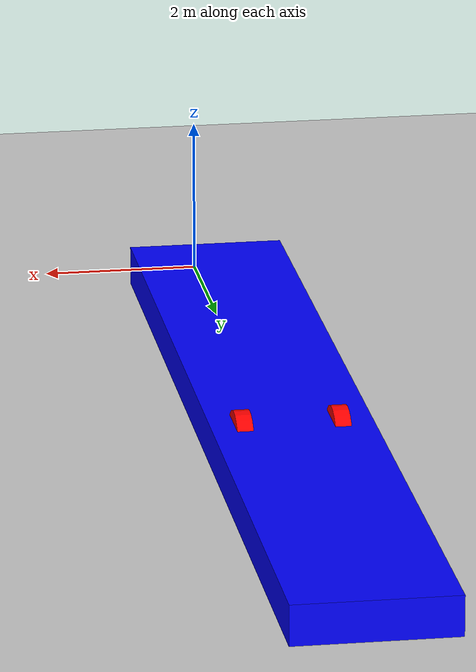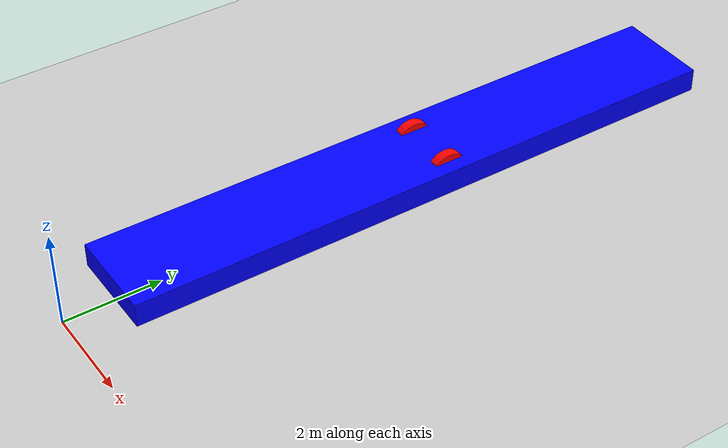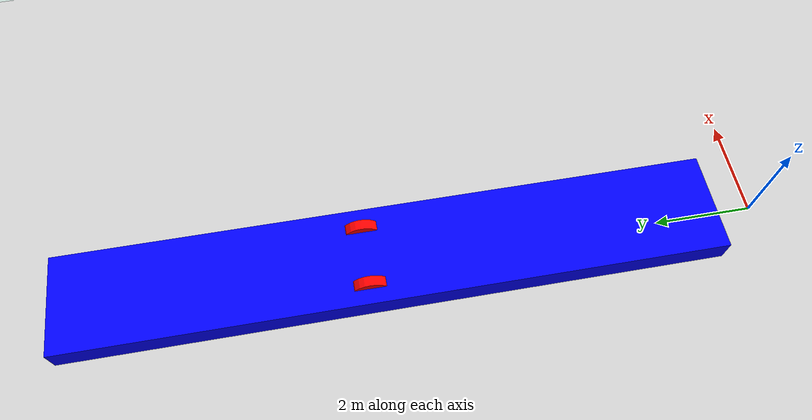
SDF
<sdf version="1.8">
 <world name="demo">
  <plugin filename="gz-sim-physics-system" name="gz::sim::systems::Physics"/>
  <plugin filename="gz-sim-sensors-system" name="gz::sim::systems::Sensors">
   <render_engine>ogre2</render_engine>
  </plugin>
  <plugin filename="gz-sim-scene-broadcaster-system" name="gz::sim::systems::SceneBroadcaster"/>
  <plugin filename="gz-sim-user-commands-system" name="gz::sim::systems::UserCommands"/>
  <light name="sun" type="directional">
   <pose>0 0 10 0 0 0</pose>
   <diffuse>0.8 0.8 0.8 1</diffuse>
   <specular>0.2 0.2 0.2 1</specular>
   <attenuation>
    <range>1000</range>
    <constant>0.9</constant>
    <linear>0.01</linear>
    <quadratic>0.001</quadratic>
   </attenuation>
   <direction>-0.5 0.1 -0.9</direction>
  </light>
  <model name="ground_plane">
   <static>true</static>
   <link name="link">
    <collision name="collision">
     <geometry><plane><normal>0 0 1</normal><size>100 100</size></plane></geometry>
    </collision>
    <visual name="visual">
     <geometry><plane><normal>0 0 1</normal><size>100 100</size></plane></geometry>
     <material>
      <ambient>0.8 0.8 0.8 1</ambient>
      <diffuse>0.8 0.8 0.8 1</diffuse>
      <specular>0.8 0.8 0.8 1</specular>
     </material>
    </visual>
   </link>
  </model>
  <model name="movable_long_obstacle" canonical_link="chassis">
   <pose relative_to="world">0 8 0 0 0 -1.5707</pose>
   <link name="chassis">
    <pose relative_to="__model__">0.5 0 0.4 0 0 0</pose>
    <inertial>
     <mass>1.14395</mass>
     <inertia>
      <ixx>0.095329</ixx>
      <ixy>0</ixy>
      <ixz>0</ixz>
      <iyy>0.381317</iyy>
      <iyz>0</iyz>
      <izz>0.476646</izz>
     </inertia>
    </inertial>
    <visual name="visual">
     <geometry><box><size>13.0 2.0 0.5</size></box></geometry>
     <material>
      <ambient>0.0 0.0 1.0 1</ambient>
      <diffuse>0.0 0.0 1.0 1</diffuse>
      <specular>0.0 0.0 1.0 1</specular>
     </material>
    </visual>
    <collision name="collision"><geometry><box><size>13.0 2.0 0.5</size></box></geometry></collision>
   </link>
   <link name="left_wheel">
    <pose relative_to="chassis">-0.5 0.6 0 -1.5707 0 0</pose>
    <inertial>
     <mass>1</mass>
     <inertia><ixx>0.043333</ixx><ixy>0</ixy><ixz>0</ixz><iyy>0.043333</iyy><iyz>0</iyz><izz>0.08</izz></inertia>
    </inertial>
    <visual name="visual">
     <geometry><cylinder><radius>0.4</radius><length>0.2</length></cylinder></geometry>
     <material>
      <ambient>1.0 0.0 0.0 1</ambient>
      <diffuse>1.0 0.0 0.0 1</diffuse>
      <specular>1.0 0.0 0.0 1</specular>
     </material>
    </visual>
    <collision name="collision">
     <geometry><cylinder><radius>0.4</radius><length>0.2</length></cylinder></geometry>
    </collision>
   </link>
   <link name="right_wheel">
    <pose relative_to="chassis">-0.5 -0.6 0 -1.5707 0 0</pose>
    <inertial>
     <mass>1</mass>
     <inertia><ixx>0.043333</ixx><ixy>0</ixy><ixz>0</ixz><iyy>0.043333</iyy><iyz>0</iyz><izz>0.08</izz></inertia>
    </inertial>
    <visual name="visual">
     <geometry><cylinder><radius>0.4</radius><length>0.2</length></cylinder></geometry>
     <material>
      <ambient>1.0 0.0 0.0 1</ambient>
      <diffuse>1.0 0.0 0.0 1</diffuse>
      <specular>1.0 0.0 0.0 1</specular>
     </material>
    </visual>
    <collision name="collision">
     <geometry><cylinder><radius>0.4</radius><length>0.2</length></cylinder></geometry>
    </collision>
   </link>
   <frame name="caster_frame" attached_to="chassis"><pose>0.8 0 -0.2 0 0 0</pose></frame>
   <link name="caster">
    <pose relative_to="caster_frame"/>
    <inertial>
     <mass>1</mass>
     <inertia><ixx>0.016</ixx><ixy>0</ixy><ixz>0</ixz><iyy>0.016</iyy><iyz>0</iyz><izz>0.016</izz></inertia>
    </inertial>
    <visual name="visual">
     <geometry><sphere><radius>0.2</radius></sphere></geometry>
     <material>
      <ambient>0.0 1 0.0 1</ambient>
      <diffuse>0.0 1 0.0 1</diffuse>
      <specular>0.0 1 0.0 1</specular>
     </material>
    </visual>
    <collision name="collision"><geometry><sphere><radius>0.2</radius></sphere></geometry></collision>
   </link>
   <joint name="left_wheel_joint" type="revolute">
    <pose relative_to="left_wheel"/>
    <parent>chassis</parent>
    <child>left_wheel</child>
    <axis>
     <xyz expressed_in="__model__">0 1 0</xyz>
     <limit><lower>-1.79769e+308</lower><upper>1.79769e+308</upper></limit>
    </axis>
   </joint>
   <joint name="right_wheel_joint" type="revolute">
    <pose relative_to="right_wheel"/>
    <parent>chassis</parent>
    <child>right_wheel</child>
    <axis>
     <xyz expressed_in="__model__">0 1 0</xyz>
     <limit><lower>-1.79769e+308</lower><upper>1.79769e+308</upper></limit>
    </axis>
   </joint>
   <joint name="caster_wheel" type="ball"><parent>chassis</parent><child>caster</child></joint>
   <plugin filename="gz-sim-diff-drive-system" name="gz::sim::systems::DiffDrive">
    <left_joint>left_wheel_joint</left_joint>
    <right_joint>right_wheel_joint</right_joint>
    <wheel_separation>1.2</wheel_separation>
    <wheel_radius>0.4</wheel_radius>
    <odom_publish_frequency>20</odom_publish_frequency>
    <odom_topic>/model/movable_long_obstacle/odometry</odom_topic>
    <topic>/model/movable_long_obstacle/cmd_vel</topic>
    <publish_odom>true</publish_odom>
    <publish_tf>false</publish_tf>
   </plugin>
  </model>
  <plugin filename="gz-sim-triggered-publisher-system" name="gz::sim::systems::TriggeredPublisher">
   <input type="gz.msgs.Int32" topic="/keyboard/keypress"><match field="data">87</match></input>
   <output type="gz.msgs.Twist" topic="/model/vehicle_blue/cmd_vel">linear: {x: 2}, angular: {z: 0.0}</output>
  </plugin>
  <plugin filename="gz-sim-triggered-publisher-system" name="gz::sim::systems::TriggeredPublisher">
   <input type="gz.msgs.Int32" topic="/keyboard/keypress"><match field="data">68</match></input>
   <output type="gz.msgs.Twist" topic="/model/vehicle_blue/cmd_vel">linear: {y: -2}, angular: {z: 0.0}</output>
  </plugin>
  <plugin filename="gz-sim-triggered-publisher-system" name="gz::sim::systems::TriggeredPublisher">
   <input type="gz.msgs.Int32" topic="/keyboard/keypress"><match field="data">65</match></input>
   <output type="gz.msgs.Twist" topic="/model/vehicle_blue/cmd_vel">linear: {y: 2}, angular: {z: 0.0}</output>
  </plugin>
  <plugin filename="gz-sim-triggered-publisher-system" name="gz::sim::systems::TriggeredPublisher">
   <input type="gz.msgs.Int32" topic="/keyboard/keypress"><match field="data">83</match></input>
   <output type="gz.msgs.Twist" topic="/model/vehicle_blue/cmd_vel">linear: {x: -2}, angular: {z: 0.0}</output>
  </plugin>
  <plugin filename="gz-sim-triggered-publisher-system" name="gz::sim::systems::TriggeredPublisher">
   <input type="gz.msgs.Int32" topic="/keyboard/keypress"><match field="data">16777235</match></input>
   <output type="gz.msgs.Twist" topic="/model/vehicle_blue/cmd_vel">linear: {x: 3}, angular: {z: 0.0}</output>
  </plugin>
  <plugin filename="gz-sim-triggered-publisher-system" name="gz::sim::systems::TriggeredPublisher">
   <input type="gz.msgs.Int32" topic="/keyboard/keypress"><match field="data">16777237</match></input>
   <output type="gz.msgs.Twist" topic="/model/vehicle_blue/cmd_vel">linear: {x: -3}, angular: {z: 0.0}</output>
  </plugin>
  <plugin filename="gz-sim-triggered-publisher-system" name="gz::sim::systems::TriggeredPublisher">
   <input type="gz.msgs.Int32" topic="/keyboard/keypress"><match field="data">16777236</match></input>
   <output type="gz.msgs.Twist" topic="/model/vehicle_blue/cmd_vel">linear: {y: 0}, angular: {z: -0.5}</output>
  </plugin>
  <plugin filename="gz-sim-triggered-publisher-system" name="gz::sim::systems::TriggeredPublisher">
   <input type="gz.msgs.Int32" topic="/keyboard/keypress"><match field="data">16777234</match></input>
   <output type="gz.msgs.Twist" topic="/model/vehicle_blue/cmd_vel">linear: {y: 0}, angular: {z: 0.5}</output>
  </plugin>
  <plugin filename="gz-sim-triggered-publisher-system" name="gz::sim::systems::TriggeredPublisher">
   <input type="gz.msgs.Int32" topic="/keyboard/keypress"><match field="data">16777248</match></input>
   <output type="gz.msgs.Twist" topic="/model/vehicle_blue/cmd_vel">linear: {x: 0.0}, angular: {z: 0.0}</output>
  </plugin>
 </world>
</sdf>
